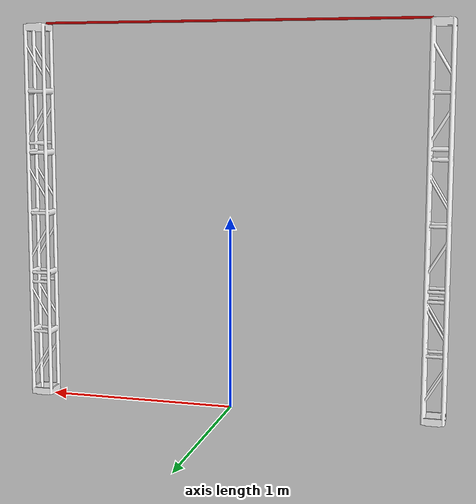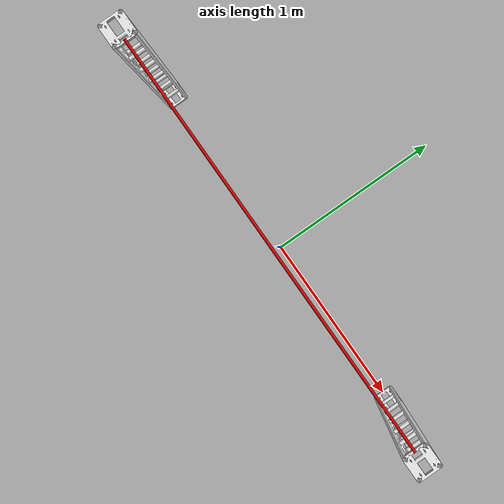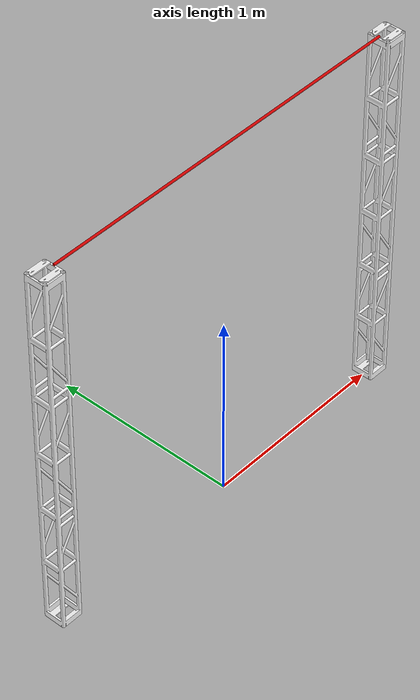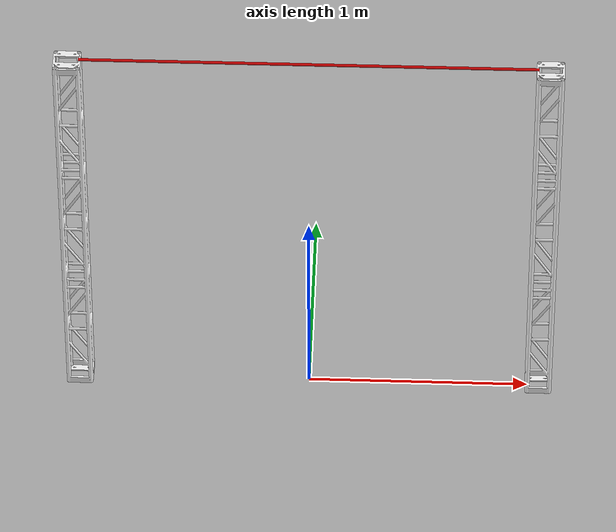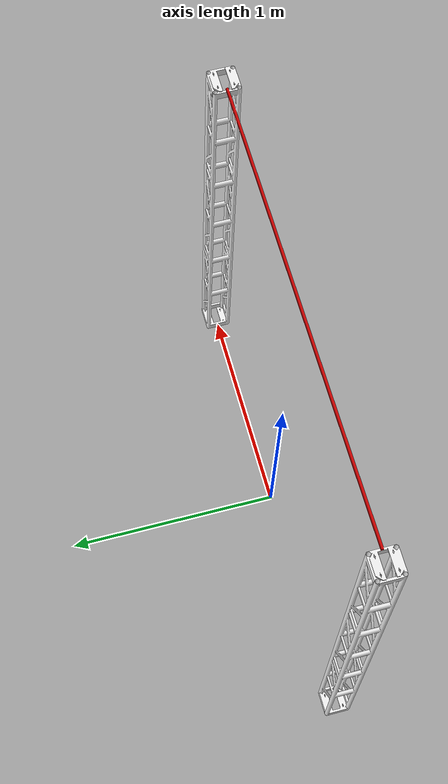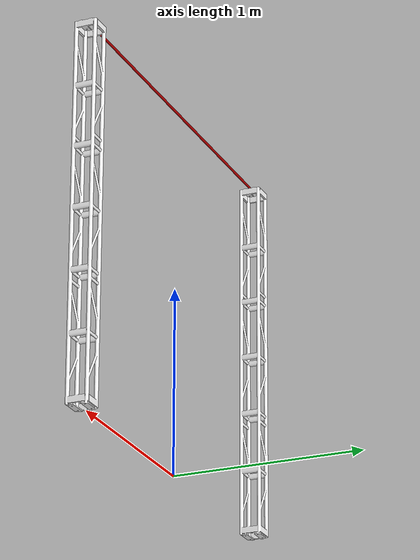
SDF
<?xml version="1.0" ?>
<sdf version="1.5">
  <model name="truss_with_hose">
    <static>true</static>
    <link name="link">
      <inertial>
        <pose>0 0 0 0 0 0</pose>
        <mass>10.0</mass>
        <inertia>
          <ixx>24.88</ixx>
          <ixy>0</ixy>
          <ixz>0</ixz>
          <iyy>25.73</iyy>
          <iyz>0</iyz>
          <izz>2.48</izz>
        </inertia>
      </inertial>

      <collision name="person">
        <pose>0 0 0 0 0 0</pose>
        <geometry>
          <mesh>
            <uri>model://truss_with_hose/meshes/truss_with_hose.dae</uri>
          </mesh>
        </geometry>
      </collision>

      <visual name="visual">
        <pose>0 0 0 0 0 0</pose>
        <geometry>
          <mesh>
            <uri>model://truss_with_hose/meshes/truss_with_hose.dae</uri>
          </mesh>
        </geometry>
      </visual>
    </link>
  </model>
</sdf>
